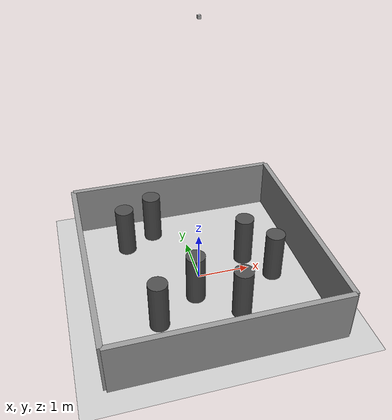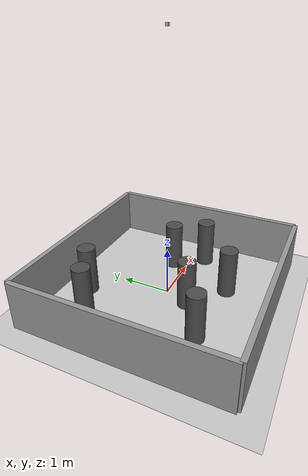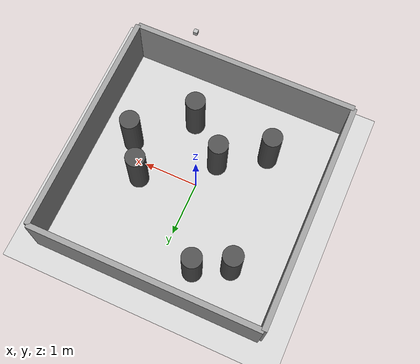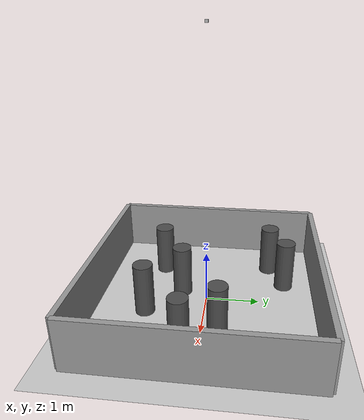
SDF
<?xml version="1.0" ?>
<sdf version="1.6">
  <world name="dense_custom_eval">

    <physics type="ode">
      <!-- Tempo real para avaliação visual -->
      <real_time_update_rate>1000.0</real_time_update_rate>
      <max_step_size>0.001</max_step_size>
      <real_time_factor>1.0</real_time_factor>
      <ode>
        <solver>
          <type>quick</type>
          <iters>150</iters>
          <sor>1.400000</sor>
        </solver>
        <constraints>
          <cfm>0.00001</cfm>
          <erp>0.2</erp>
          <contact_max_correcting_vel>2000.0</contact_max_correcting_vel>
          <contact_surface_layer>0.01</contact_surface_layer>
        </constraints>
      </ode>
    </physics>

    <include><uri>model://sun</uri></include>
    <include><uri>model://ground_plane</uri></include>

    <!-- Paredes (arena 4m × 4m) -->
    <model name="wall_north"><static>true</static><pose>0 2.1 0.5 0 0 0</pose>
      <link name="link">
        <collision name="col"><geometry><box><size>4.2 0.1 1.0</size></box></geometry></collision>
        <visual name="vis"><geometry><box><size>4.2 0.1 1.0</size></box></geometry>
          <material><script><name>Gazebo/Grey</name></script></material></visual>
      </link>
    </model>
    <model name="wall_south"><static>true</static><pose>0 -2.1 0.5 0 0 0</pose>
      <link name="link">
        <collision name="col"><geometry><box><size>4.2 0.1 1.0</size></box></geometry></collision>
        <visual name="vis"><geometry><box><size>4.2 0.1 1.0</size></box></geometry>
          <material><script><name>Gazebo/Grey</name></script></material></visual>
      </link>
    </model>
    <model name="wall_east"><static>true</static><pose>2.1 0 0.5 0 0 1.5708</pose>
      <link name="link">
        <collision name="col"><geometry><box><size>4.2 0.1 1.0</size></box></geometry></collision>
        <visual name="vis"><geometry><box><size>4.2 0.1 1.0</size></box></geometry>
          <material><script><name>Gazebo/Grey</name></script></material></visual>
      </link>
    </model>
    <model name="wall_west"><static>true</static><pose>-2.1 0 0.5 0 0 1.5708</pose>
      <link name="link">
        <collision name="col"><geometry><box><size>4.2 0.1 1.0</size></box></geometry></collision>
        <visual name="vis"><geometry><box><size>4.2 0.1 1.0</size></box></geometry>
          <material><script><name>Gazebo/Grey</name></script></material></visual>
      </link>
    </model>

    <!-- Obstáculos cilíndricos (idênticos ao mundo de treino) -->
    <model name="obs_0"><static>true</static><pose>-1.2 1.2 0.5 0 0 0</pose>
      <link name="link">
        <collision name="col"><geometry><cylinder><radius>0.18</radius><length>1.0</length></cylinder></geometry></collision>
        <visual name="vis"><geometry><cylinder><radius>0.18</radius><length>1.0</length></cylinder></geometry>
          <material><script><name>Gazebo/DarkGrey</name></script></material></visual>
      </link>
    </model>
    <model name="obs_1"><static>true</static><pose>-0.6 1.5 0.5 0 0 0</pose>
      <link name="link">
        <collision name="col"><geometry><cylinder><radius>0.18</radius><length>1.0</length></cylinder></geometry></collision>
        <visual name="vis"><geometry><cylinder><radius>0.18</radius><length>1.0</length></cylinder></geometry>
          <material><script><name>Gazebo/DarkGrey</name></script></material></visual>
      </link>
    </model>
    <model name="obs_2"><static>true</static><pose>1.0 0.3 0.5 0 0 0</pose>
      <link name="link">
        <collision name="col"><geometry><cylinder><radius>0.18</radius><length>1.0</length></cylinder></geometry></collision>
        <visual name="vis"><geometry><cylinder><radius>0.18</radius><length>1.0</length></cylinder></geometry>
          <material><script><name>Gazebo/DarkGrey</name></script></material></visual>
      </link>
    </model>
    <model name="obs_3"><static>true</static><pose>1.4 -0.3 0.5 0 0 0</pose>
      <link name="link">
        <collision name="col"><geometry><cylinder><radius>0.18</radius><length>1.0</length></cylinder></geometry></collision>
        <visual name="vis"><geometry><cylinder><radius>0.18</radius><length>1.0</length></cylinder></geometry>
          <material><script><name>Gazebo/DarkGrey</name></script></material></visual>
      </link>
    </model>
    <model name="obs_4"><static>true</static><pose>-0.2 -0.5 0.5 0 0 0</pose>
      <link name="link">
        <collision name="col"><geometry><cylinder><radius>0.18</radius><length>1.0</length></cylinder></geometry></collision>
        <visual name="vis"><geometry><cylinder><radius>0.18</radius><length>1.0</length></cylinder></geometry>
          <material><script><name>Gazebo/DarkGrey</name></script></material></visual>
      </link>
    </model>
    <model name="obs_5"><static>true</static><pose>0.5 -1.1 0.5 0 0 0</pose>
      <link name="link">
        <collision name="col"><geometry><cylinder><radius>0.18</radius><length>1.0</length></cylinder></geometry></collision>
        <visual name="vis"><geometry><cylinder><radius>0.18</radius><length>1.0</length></cylinder></geometry>
          <material><script><name>Gazebo/DarkGrey</name></script></material></visual>
      </link>
    </model>
    <model name="obs_6"><static>true</static><pose>-1.0 -1.0 0.5 0 0 0</pose>
      <link name="link">
        <collision name="col"><geometry><cylinder><radius>0.18</radius><length>1.0</length></cylinder></geometry></collision>
        <visual name="vis"><geometry><cylinder><radius>0.18</radius><length>1.0</length></cylinder></geometry>
          <material><script><name>Gazebo/DarkGrey</name></script></material></visual>
      </link>
    </model>

    <!-- Câmera overhead a z=5m (arena 4m → FOV 60° cobre ~5.8m) -->
    <model name="camera_overhead">
      <static>true</static>
      <pose>0 0 5 0 1.5708 0</pose>
      <link name="link">
        <visual name="vis">
          <geometry><box><size>0.05 0.05 0.05</size></box></geometry>
        </visual>
        <sensor type="camera" name="camera_overhead">
          <update_rate>10</update_rate>
          <camera>
            <horizontal_fov>1.2217</horizontal_fov> <!-- 70° — cobre arena 4m de z=5m -->
            <image><width>640</width><height>640</height><format>R8G8B8</format></image>
            <clip><near>0.1</near><far>20</far></clip>
          </camera>
          <plugin name="camera_controller" filename="libgazebo_ros_camera.so">
            <ros>
              <remapping>camera_overhead/image_raw:=camera/image_raw</remapping>
              <remapping>camera_overhead/camera_info:=camera/camera_info</remapping>
            </ros>
            <camera_name>camera_overhead</camera_name>
            <frame_name>camera_overhead_link</frame_name>
          </plugin>
        </sensor>
      </link>
    </model>

    <!-- GUI — visão top-down para gzclient -->
    <gui fullscreen="0">
      <camera name="user_camera">
        <pose>0 0 8 0 1.5708 0</pose>
        <view_controller>orbit</view_controller>
      </camera>
    </gui>

  </world>
</sdf>
